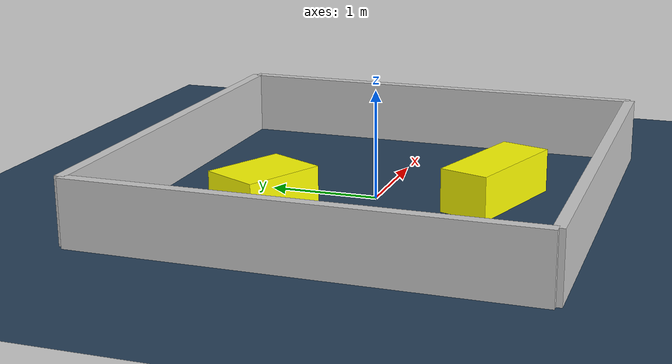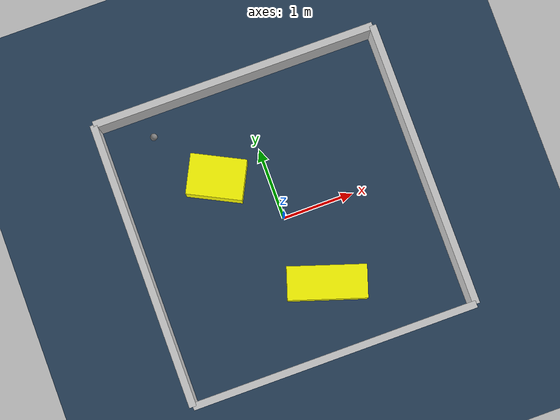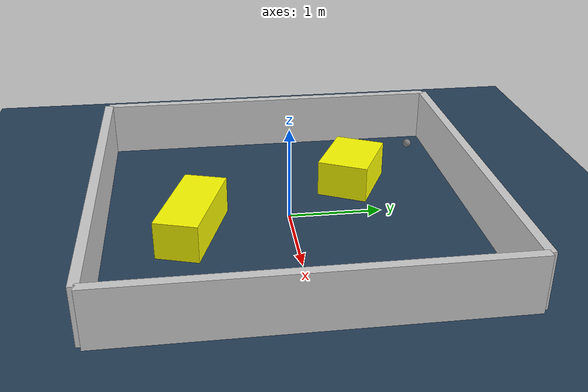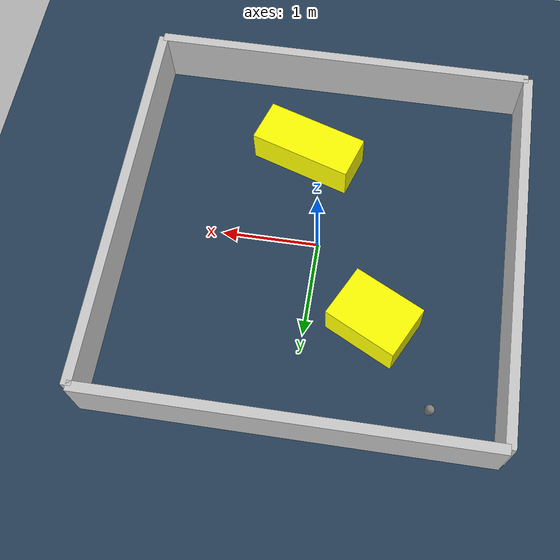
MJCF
<?xml version="1.0" ?>
<mujoco model="generated_environment">
  <option timestep="0.01" integrator="RK4" cone="elliptic"/>
  <default>
    <geom density="1"/>
  </default>
  <asset>
    <texture builtin="gradient" height="3072" rgb1="0.3 0.5 0.7" rgb2="0 0 0" type="skybox" width="512"/>
    <texture builtin="checker" height="300" mark="edge" markrgb="0.8 0.8 0.8" name="groundplane" rgb1="0.2 0.3 0.4" rgb2="0.1 0.2 0.3" type="2d" width="300"/>
    <material name="groundplane" reflectance="0.2" texrepeat="5 5" texture="groundplane" texuniform="true"/>
    <material name="robot" rgba="0.0 1.0 0.0 1"/>
  </asset>
  <worldbody>
    <light dir="0 0 -1" directional="true" pos="0 0 1.5"/>
    <geom condim="4" friction="1.0 0.005 0.001" material="groundplane" name="floor" size="0 0 0.05" type="plane"/>
    <body name="walls">
      <geom name="wall_1" condim="4" pos="-2.0 0.0 0.3" rgba="0.800000011920929 0.800000011920929 0.800000011920929 1.0" size="0.05 2.0 0.3" type="box"/>
      <geom name="wall_2" condim="4" pos="2.0 0.0 0.3" rgba="0.800000011920929 0.800000011920929 0.800000011920929 1.0" size="0.05 2.0 0.3" type="box"/>
      <geom name="wall_3" condim="4" pos="0.0 -2.0 0.3" rgba="0.800000011920929 0.800000011920929 0.800000011920929 1.0" size="2.0 0.05 0.3" type="box"/>
      <geom name="wall_4" condim="4" pos="0.0 2.0 0.3" rgba="0.800000011920929 0.800000011920929 0.800000011920929 1.0" size="2.0 0.05 0.3" type="box"/>
    </body>
    <body name="robot">
      <joint name="joint_x" type="slide" pos="0 0 0" axis="1 0 0"/>
      <joint name="joint_y" type="slide" pos="0 0 0" axis="0 1 0"/>
      <geom name="robot" type="sphere" pos="-1.2983698781153583 1.6356171666076067 0.2" size="0.05" mass="5." friction="1.0 0.005 0.0001" condim="4"/>
      <site name="sensor_ball"/>
    </body>
    <body name="obstacle_1_movable">
      <geom name="obstacle_1_movable" condim="4" pos="-0.6790794584135147 0.8065533007528691 0.2" euler="0 0 63.29452629979229" friction="1.0 0.005 0.001" rgba="1 1 0 1" size="0.28024599217213375 0.3865531811037697 0.2" type="box" mass="0.1"/>
      <joint type="free"/>
    </body>
    <body name="obstacle_2_movable">
      <geom name="obstacle_2_movable" condim="4" pos="0.2438705876393421 -1.0440384351370597 0.2" euler="0 0 252.06879831932798" friction="1.0 0.005 0.001" rgba="1 1 0 1" size="0.22967981279741184 0.5440807062681352 0.2" type="box" mass="0.1"/>
      <joint type="free"/>
    </body>
  </worldbody>
  <actuator>
    <motor name="actuator_x" joint="joint_x" gear="1" ctrlrange="-1 1"/>
    <motor name="actuator_y" joint="joint_y" gear="1" ctrlrange="-1 1"/>
  </actuator>
</mujoco>
